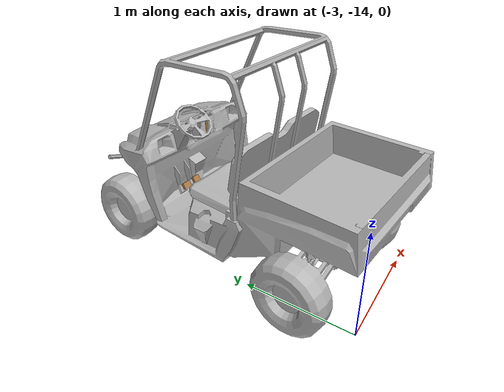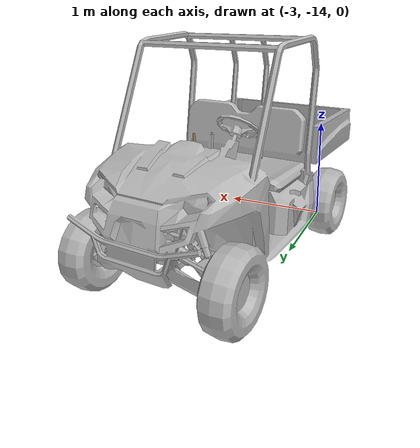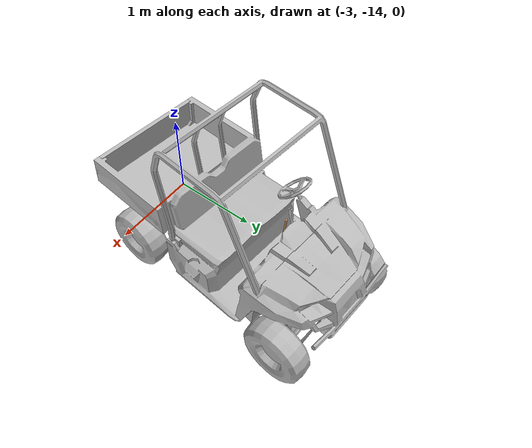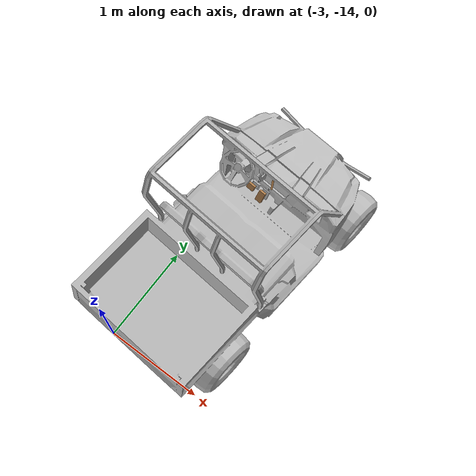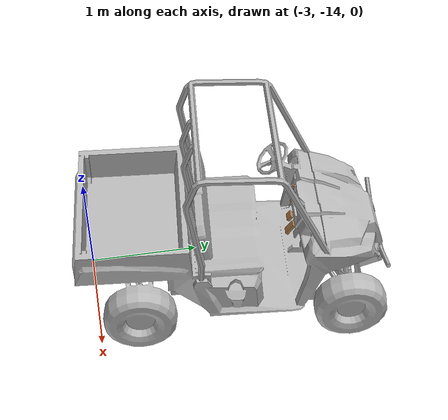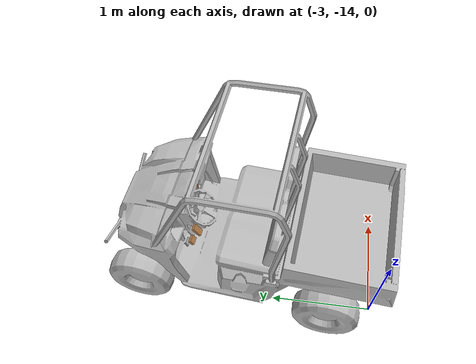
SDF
<sdf version="1.6">
 <world name="default">
  <model name="polaris_ranger_ev_clone_1_clone_clone_clone_clone_4">
   <static>true</static>
   <link name="chassis">
    <inertial>
     <mass>720</mass>
     <inertia><ixx>140</ixx><ixy>0</ixy><iyy>550</iyy><ixz>0</ixz><iyz>0</iyz><izz>550</izz></inertia>
    </inertial>
    <visual name="visual">
     <pose>0 0 0 0 0 -1.5708</pose>
     <geometry><mesh><uri>model://polaris_ranger_ev/meshes/polaris.dae</uri><scale>1 1 1</scale></mesh></geometry>
     <material>
      <script>
       <uri>model://polaris_ranger_ev/materials/scripts</uri>
       <uri>model://polaris_ranger_ev/materials/textures</uri>
       <name>Polaris/Diffuse</name>
      </script>
     </material>
    </visual>
    <collision name="chassis_bottom">
     <pose>0 0 0.35 0 -0 0</pose>
     <geometry><box><size>2 1 0.1</size></box></geometry>
    </collision>
    <collision name="cargo_bottom">
     <pose>-0.9 0 0.9 0 -0 0</pose>
     <geometry><box><size>0.9 1.2 0.01</size></box></geometry>
    </collision>
    <collision name="cargo_front">
     <pose>-0.45 0 1.025 0 -0 0</pose>
     <geometry><box><size>0.05 1.2 0.25</size></box></geometry>
    </collision>
    <collision name="cargo_back">
     <pose>-1.35 0 1.025 0 -0 0</pose>
     <geometry><box><size>0.05 1.2 0.25</size></box></geometry>
    </collision>
    <collision name="cargo_left">
     <pose>-0.9 0.6 1.025 0 -0 0</pose>
     <geometry><box><size>0.9 0.05 0.25</size></box></geometry>
    </collision>
    <collision name="cargo_right">
     <pose>-0.9 -0.6 1.025 0 -0 0</pose>
     <geometry><box><size>0.9 0.05 0.25</size></box></geometry>
    </collision>
    <collision name="seat">
     <pose>-0.1 0 0.625 0 -0 0</pose>
     <geometry><box><size>0.6 1 0.65</size></box></geometry>
    </collision>
    <collision name="seat_back">
     <pose>-0.3 0 1.125 0 -0.2 0</pose>
     <geometry><box><size>0.1 1 0.4</size></box></geometry>
    </collision>
    <collision name="engine">
     <pose>0.95 0 0.7 0 -0 0</pose>
     <geometry><box><size>0.58 1 0.8</size></box></geometry>
    </collision>
    <collision name="steering_column">
     <pose>0.525 0.3 1.025 0 -0.8 0</pose>
     <geometry><cylinder><radius>0.05</radius><length>0.45</length></cylinder></geometry>
    </collision>
   </link>
   <link name="rear_right_wheel">
    <pose>-0.85 -0.6 0.32 1.5708 -0 0</pose>
    <inertial>
     <mass>12</mass>
     <inertia><ixx>0.5</ixx><ixy>0</ixy><iyy>0.5</iyy><ixz>0</ixz><iyz>0</iyz><izz>1</izz></inertia>
    </inertial>
    <collision name="collision">
     <geometry><cylinder><radius>0.32</radius><length>0.23</length></cylinder></geometry>
     <surface>
      <friction><ode><mu>100000</mu><mu2>100000</mu2><slip1>0</slip1><slip2>0</slip2></ode></friction>
     </surface>
    </collision>
   </link>
   <joint name="rear_right_wheel_joint" type="revolute">
    <pose>0 0 -0.1 0 -0 0</pose>
    <child>rear_right_wheel</child>
    <parent>chassis</parent>
    <axis>
     <xyz>0 1 0</xyz>
     <use_parent_model_frame>1</use_parent_model_frame>
     <limit><lower>-1e+16</lower><upper>1e+16</upper></limit>
     <dynamics><spring_reference>0</spring_reference><spring_stiffness>0</spring_stiffness></dynamics>
    </axis>
    <physics><ode><limit><cfm>0</cfm><erp>0.9</erp></limit></ode></physics>
   </joint>
   <link name="rear_left_wheel">
    <pose>-0.85 0.6 0.32 1.5708 -0 0</pose>
    <inertial>
     <mass>12</mass>
     <inertia><ixx>0.5</ixx><ixy>0</ixy><iyy>0.5</iyy><ixz>0</ixz><iyz>0</iyz><izz>1</izz></inertia>
    </inertial>
    <collision name="collision">
     <geometry><cylinder><radius>0.32</radius><length>0.23</length></cylinder></geometry>
     <surface>
      <friction><ode><mu>100000</mu><mu2>100000</mu2><slip1>0</slip1><slip2>0</slip2></ode></friction>
     </surface>
    </collision>
   </link>
   <joint name="rear_left_wheel_joint" type="revolute">
    <child>rear_left_wheel</child>
    <parent>chassis</parent>
    <axis>
     <xyz>0 1 0</xyz>
     <use_parent_model_frame>1</use_parent_model_frame>
     <limit><lower>-1e+16</lower><upper>1e+16</upper></limit>
     <dynamics><spring_reference>0</spring_reference><spring_stiffness>0</spring_stiffness></dynamics>
    </axis>
    <physics><ode><limit><cfm>0</cfm><erp>0.9</erp></limit></ode></physics>
   </joint>
   <link name="front_right_wheel">
    <pose>1.03 -0.6 0.32 1.5708 -0 0</pose>
    <inertial>
     <mass>12</mass>
     <inertia><ixx>0.5</ixx><ixy>0</ixy><iyy>0.5</iyy><ixz>0</ixz><iyz>0</iyz><izz>1</izz></inertia>
    </inertial>
    <collision name="collision">
     <geometry><cylinder><radius>0.32</radius><length>0.23</length></cylinder></geometry>
     <surface>
      <friction><ode><mu>100000</mu><mu2>100000</mu2><slip1>0</slip1><slip2>0</slip2></ode></friction>
     </surface>
    </collision>
   </link>
   <link name="front_right_wheel_steering_block">
    <pose>1.03 -0.5 0.32 1.5708 -0 0</pose>
    <inertial>
     <mass>1</mass>
     <inertia><ixx>1</ixx><ixy>0</ixy><iyy>1</iyy><ixz>0</ixz><iyz>0</iyz><izz>1</izz></inertia>
    </inertial>
    <collision name="collision">
     <geometry><cylinder><radius>0.05</radius><length>0.01</length></cylinder></geometry>
    </collision>
   </link>
   <joint name="front_right_steering_joint" type="revolute">
    <child>front_right_wheel_steering_block</child>
    <parent>chassis</parent>
    <axis>
     <xyz>0 0 1</xyz>
     <limit><lower>-1</lower><upper>1</upper></limit>
     <use_parent_model_frame>1</use_parent_model_frame>
     <dynamics><spring_reference>0</spring_reference><spring_stiffness>0</spring_stiffness></dynamics>
    </axis>
    <physics><ode><limit><cfm>0</cfm><erp>0.9</erp></limit></ode></physics>
   </joint>
   <joint name="front_right_wheel_joint" type="revolute">
    <child>front_right_wheel</child>
    <parent>front_right_wheel_steering_block</parent>
    <axis>
     <xyz>0 1 0</xyz>
     <use_parent_model_frame>1</use_parent_model_frame>
     <limit><lower>-1e+16</lower><upper>1e+16</upper></limit>
     <dynamics><spring_reference>0</spring_reference><spring_stiffness>0</spring_stiffness></dynamics>
    </axis>
    <physics><ode><limit><cfm>0</cfm><erp>0.9</erp></limit></ode></physics>
   </joint>
   <link name="front_left_wheel">
    <pose>1.03 0.6 0.32 1.5708 -0 0</pose>
    <inertial>
     <mass>12</mass>
     <inertia><ixx>0.5</ixx><ixy>0</ixy><iyy>0.5</iyy><ixz>0</ixz><iyz>0</iyz><izz>1</izz></inertia>
    </inertial>
    <collision name="collision">
     <geometry><cylinder><radius>0.32</radius><length>0.23</length></cylinder></geometry>
     <surface>
      <friction><ode><mu>100000</mu><mu2>100000</mu2><slip1>0</slip1><slip2>0</slip2></ode></friction>
     </surface>
    </collision>
   </link>
   <link name="front_left_wheel_steering_block">
    <pose>1.03 0.5 0.32 1.5708 -0 0</pose>
    <inertial>
     <mass>1</mass>
     <inertia><ixx>1</ixx><ixy>0</ixy><iyy>1</iyy><ixz>0</ixz><iyz>0</iyz><izz>1</izz></inertia>
    </inertial>
    <collision name="collision">
     <geometry><cylinder><radius>0.05</radius><length>0.01</length></cylinder></geometry>
    </collision>
   </link>
   <joint name="front_left_steering_joint" type="revolute">
    <child>front_left_wheel_steering_block</child>
    <parent>chassis</parent>
    <axis>
     <xyz>0 0 1</xyz>
     <limit><lower>-1</lower><upper>1</upper></limit>
     <use_parent_model_frame>1</use_parent_model_frame>
     <dynamics><spring_reference>0</spring_reference><spring_stiffness>0</spring_stiffness></dynamics>
    </axis>
    <physics><ode><limit><cfm>0</cfm><erp>0.9</erp></limit></ode></physics>
   </joint>
   <joint name="front_left_wheel_joint" type="revolute">
    <child>front_left_wheel</child>
    <parent>front_left_wheel_steering_block</parent>
    <axis>
     <xyz>0 1 0</xyz>
     <use_parent_model_frame>1</use_parent_model_frame>
     <limit><lower>-1e+16</lower><upper>1e+16</upper></limit>
     <dynamics><spring_reference>0</spring_reference><spring_stiffness>0</spring_stiffness></dynamics>
    </axis>
    <physics><ode><limit><cfm>0</cfm><erp>0.9</erp></limit></ode></physics>
   </joint>
   <link name="gas_pedal">
    <pose>0.53 0.14 0.56 0 -1 0</pose>
    <gravity>0</gravity>
    <inertial>
     <mass>0.1</mass>
     <inertia><ixx>0.01</ixx><ixy>0</ixy><ixz>0</ixz><iyy>0.01</iyy><iyz>0</iyz><izz>0.01</izz></inertia>
    </inertial>
    <collision name="gas_pedal_collision"><geometry><box><size>0.12 0.07 0.03</size></box></geometry></collision>
    <visual name="gas_pedal_visual">
     <geometry><box><size>0.12 0.07 0.03</size></box></geometry>
     <material>
      <script><uri>file://media/materials/scripts/gazebo.material</uri><name>Gazebo/Wood</name></script>
      <ambient>0.2 0.2 0.2 1</ambient>
      <diffuse>0.2 0.2 0.2 1</diffuse>
      <specular>0.2 0.2 0.2 1</specular>
      <emissive>0.5 0.5 0.5 1</emissive>
     </material>
    </visual>
   </link>
   <link name="brake_pedal">
    <gravity>0</gravity>
    <pose>0.54 0.27 0.58 0 -1 0</pose>
    <inertial>
     <mass>0.1</mass>
     <inertia><ixx>0.01</ixx><ixy>0</ixy><ixz>0</ixz><iyy>0.01</iyy><iyz>0</iyz><izz>0.01</izz></inertia>
    </inertial>
    <collision name="brake_pedal_collision">
     <geometry><box><size>0.06 0.08 0.03</size></box></geometry>
    </collision>
    <visual name="brake_pedal_visual">
     <geometry><box><size>0.06 0.08 0.03</size></box></geometry>
     <material>
      <script><uri>file://media/materials/scripts/gazebo.material</uri><name>Gazebo/Wood</name></script>
      <ambient>0.2 0.2 0.2 1</ambient>
      <diffuse>0.2 0.2 0.2 1</diffuse>
      <specular>0.2 0.2 0.2 1</specular>
      <emissive>0.5 0.5 0.5 1</emissive>
     </material>
    </visual>
   </link>
   <link name="steering_wheel">
    <pose>0.37 0.3 1.2 0 -0.8 0</pose>
    <inertial>
     <mass>1</mass>
     <inertia><ixx>0.1</ixx><ixy>0</ixy><ixz>0</ixz><iyy>0.1</iyy><iyz>0</iyz><izz>1</izz></inertia>
    </inertial>
    <collision name="steering_wheel_post_left">
     <pose>0 0.08 0 1.5708 -0 0</pose>
     <geometry><cylinder><radius>0.02</radius><length>0.15</length></cylinder></geometry>
    </collision>
    <collision name="steering_wheel_post_right">
     <pose>0 -0.08 0 1.5708 -0 0</pose>
     <geometry><cylinder><radius>0.02</radius><length>0.15</length></cylinder></geometry>
    </collision>
    <collision name="steering_wheel_post_middle">
     <pose>-0.08 0 0 3.14159 1.57079 3.14159</pose>
     <geometry><cylinder><radius>0.02</radius><length>0.15</length></cylinder></geometry>
    </collision>
    <collision name="collision00">
     <pose>0.15 0 0 3.14159 1.57079 -1.57079</pose>
     <geometry><cylinder><length>0.105066</length><radius>0.01</radius></cylinder></geometry>
    </collision>
    <collision name="collision01">
     <pose>0.121353 0.088168 0 3.14159 1.57079 -0.942483</pose>
     <geometry><cylinder><length>0.105066</length><radius>0.01</radius></cylinder></geometry>
    </collision>
    <collision name="collision02">
     <pose>0.046353 0.142658 0 3.14159 1.57079 -0.314163</pose>
     <geometry><cylinder><length>0.105066</length><radius>0.01</radius></cylinder></geometry>
    </collision>
    <collision name="collision03">
     <pose>-0.046353 0.142658 0 3.14159 1.57079 0.314163</pose>
     <geometry><cylinder><length>0.105066</length><radius>0.01</radius></cylinder></geometry>
    </collision>
    <collision name="collision04">
     <pose>-0.121353 0.088168 0 -3.14159 1.57079 0.942483</pose>
     <geometry><cylinder><length>0.105066</length><radius>0.01</radius></cylinder></geometry>
    </collision>
    <collision name="collision05">
     <pose>-0.15 0 0 -3.14159 1.57079 1.57079</pose>
     <geometry><cylinder><length>0.105066</length><radius>0.01</radius></cylinder></geometry>
    </collision>
    <collision name="collision06">
     <pose>-0.121353 -0.088168 0 3.14159 1.57079 2.19912</pose>
     <geometry><cylinder><length>0.105066</length><radius>0.01</radius></cylinder></geometry>
    </collision>
    <collision name="collision07">
     <pose>-0.046353 -0.142658 0 -3.14159 1.57079 2.82743</pose>
     <geometry><cylinder><length>0.105066</length><radius>0.01</radius></cylinder></geometry>
    </collision>
    <collision name="collision08">
     <pose>0.046353 -0.142658 0 3.14159 1.57079 -2.82743</pose>
     <geometry><cylinder><length>0.105066</length><radius>0.01</radius></cylinder></geometry>
    </collision>
    <collision name="collision09">
     <pose>0.121353 -0.088168 0 -3.14159 1.57079 -2.19911</pose>
     <geometry><cylinder><length>0.105066</length><radius>0.01</radius></cylinder></geometry>
    </collision>
   </link>
   <link name="hand_brake">
    <pose>0.5 0 1.05 3.14159 -0.058407 3.14159</pose>
    <inertial>
     <mass>1</mass>
     <pose>0 0 -0.15 0 -0 0</pose>
     <inertia><ixx>0.1</ixx><ixy>0</ixy><ixz>0</ixz><iyy>0.1</iyy><iyz>0</iyz><izz>1</izz></inertia>
    </inertial>
    <collision name="hand_brake_collision">
     <pose>0 0 -0.1 0 -0 0</pose>
     <geometry><cylinder><radius>0.01</radius><length>0.2</length></cylinder></geometry>
    </collision>
    <visual name="hand_brake_visual">
     <pose>0 0 -0.1 0 -0 0</pose>
     <geometry><cylinder><radius>0.01</radius><length>0.2</length></cylinder></geometry>
     <material>
      <script><uri>file://media/materials/scripts/gazebo.material</uri><name>Gazebo/Wood</name></script>
     </material>
    </visual>
   </link>
   <joint name="gas_joint" type="prismatic">
    <parent>chassis</parent>
    <child>gas_pedal</child>
    <axis>
     <xyz>1 0 -1</xyz>
     <limit><lower>0</lower><upper>0.15</upper></limit>
     <use_parent_model_frame>1</use_parent_model_frame>
     <dynamics><spring_reference>0</spring_reference><spring_stiffness>0</spring_stiffness></dynamics>
    </axis>
   </joint>
   <joint name="brake_joint" type="prismatic">
    <parent>chassis</parent>
    <child>brake_pedal</child>
    <axis>
     <xyz>1 0 -0.6</xyz>
     <limit><lower>0</lower><upper>0.15</upper></limit>
     <use_parent_model_frame>1</use_parent_model_frame>
     <dynamics><spring_reference>0</spring_reference><spring_stiffness>0</spring_stiffness></dynamics>
    </axis>
   </joint>
   <joint name="steering_joint" type="revolute">
    <pose>0 0 0 1.5708 -0.8 0</pose>
    <parent>chassis</parent>
    <child>steering_wheel</child>
    <axis>
     <xyz>-1 0 1.023</xyz>
     <limit><lower>-7.853</lower><upper>7.853</upper></limit>
     <use_parent_model_frame>1</use_parent_model_frame>
     <dynamics><spring_reference>0</spring_reference><spring_stiffness>0</spring_stiffness></dynamics>
    </axis>
   </joint>
   <joint name="hand_brake_joint" type="revolute">
    <parent>chassis</parent>
    <child>hand_brake</child>
    <axis>
     <xyz>0 -1 0</xyz>
     <limit><lower>0</lower><upper>0.6</upper></limit>
     <use_parent_model_frame>1</use_parent_model_frame>
     <dynamics><spring_reference>0</spring_reference><spring_stiffness>0</spring_stiffness></dynamics>
    </axis>
   </joint>
   <pose>-2.50383 -12.7052 -4.7e-05 0 5.4e-05 1.47747</pose>
  </model>
 </world>
</sdf>
